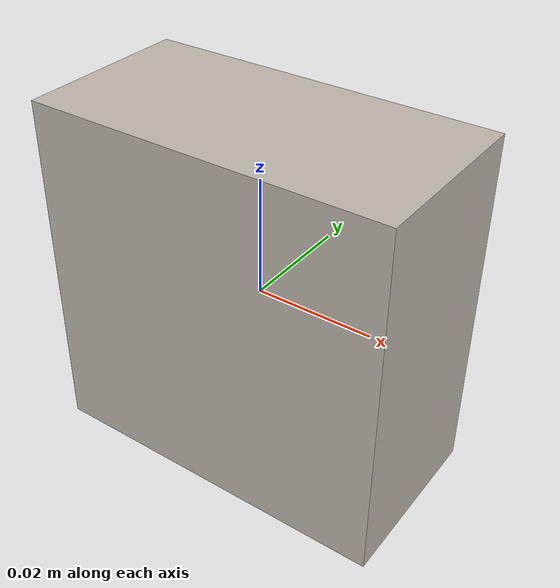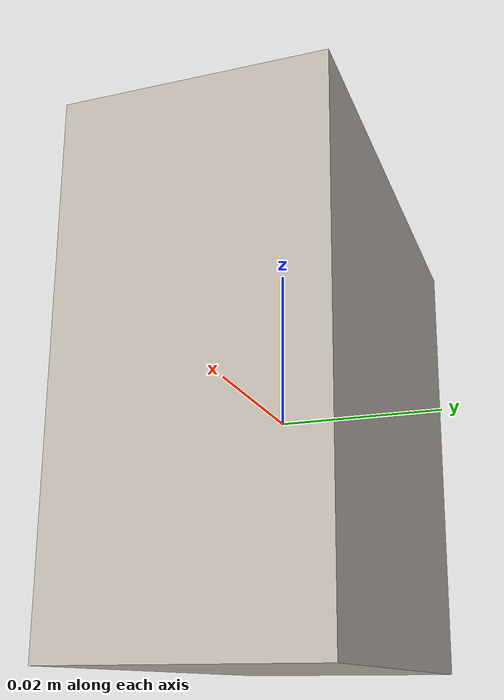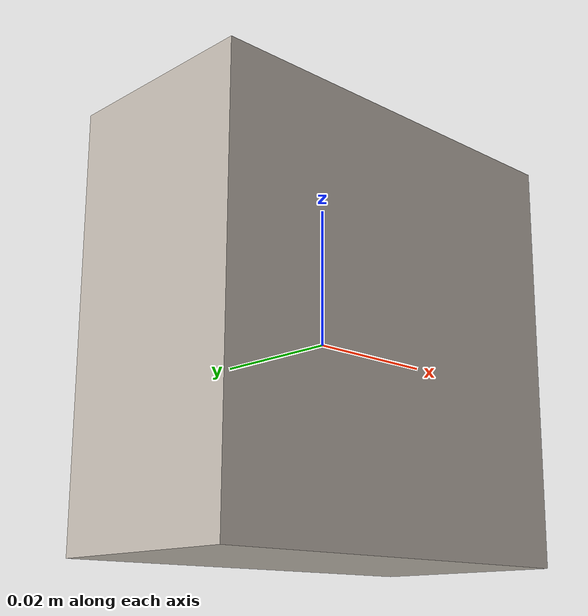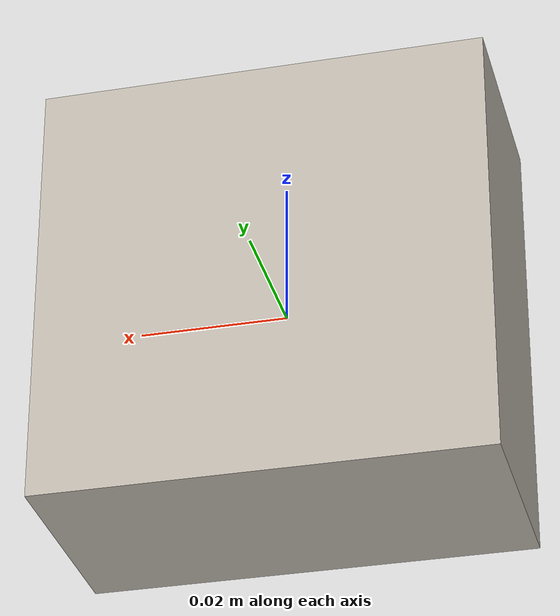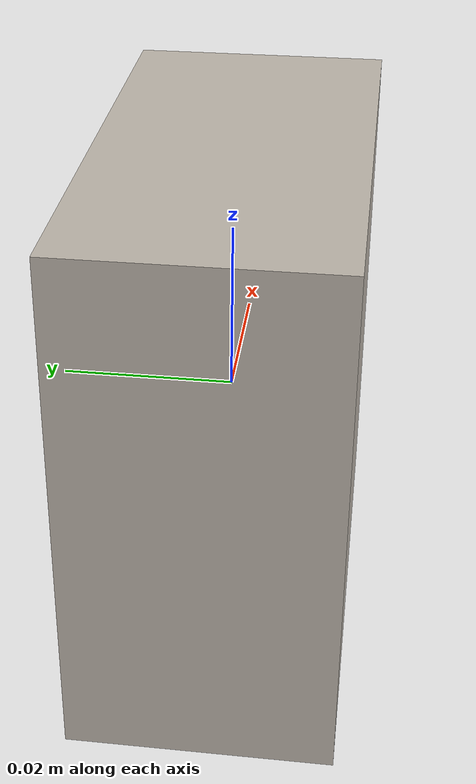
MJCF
<mujoco model="candy">
  <asset>
    <texture type="cube" file="textures/smallboxes/candy.png" rgb1="1 1 1" name="tex-candy"/>
    <material name="candy" reflectance="0.5" texrepeat="3 3" texture="tex-candy" texuniform="false"/>
  </asset>
  <worldbody>
    <body>
      <body name="collision">
        <geom pos="0 0 0" size="0.03 0.015 0.03" type="box" solimp="0.998 0.998 0.001" solref="0.001 1" density="150" friction="0.95 0.3 0.1" material="candy" group="1" condim="4"/>
      </body>
      <site rgba="0 0 0 0" size="0.005" pos="0 0 -0.05" name="bottom_site"/>
      <site rgba="0 0 0 0" size="0.005" pos="0 0 0.03" name="top_site"/>
      <site rgba="0 0 0 0" size="0.005" pos="0.06 0.06 0" name="horizontal_radius_site"/>
    </body>
  </worldbody>
</mujoco>
